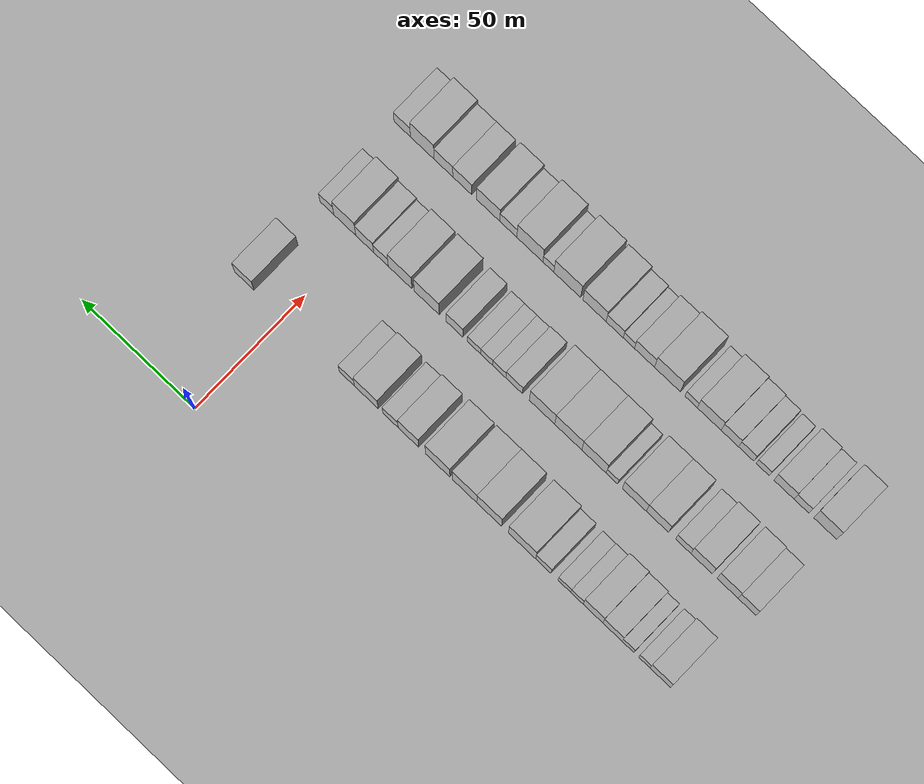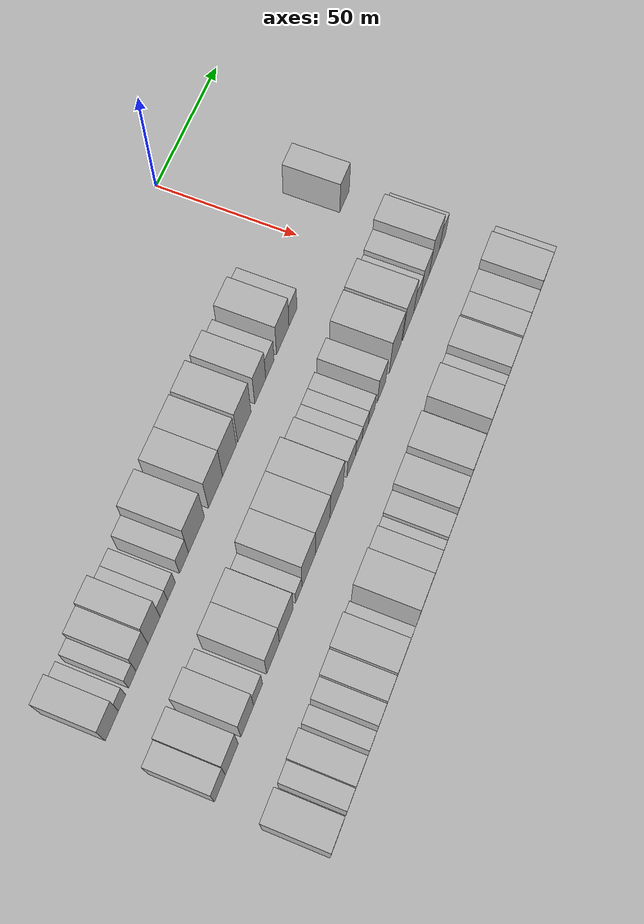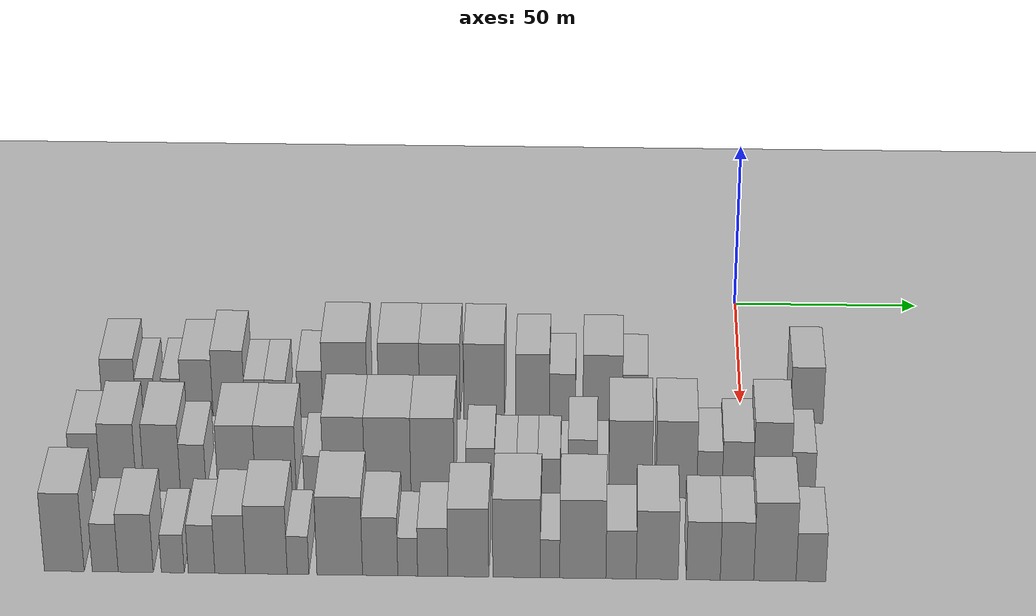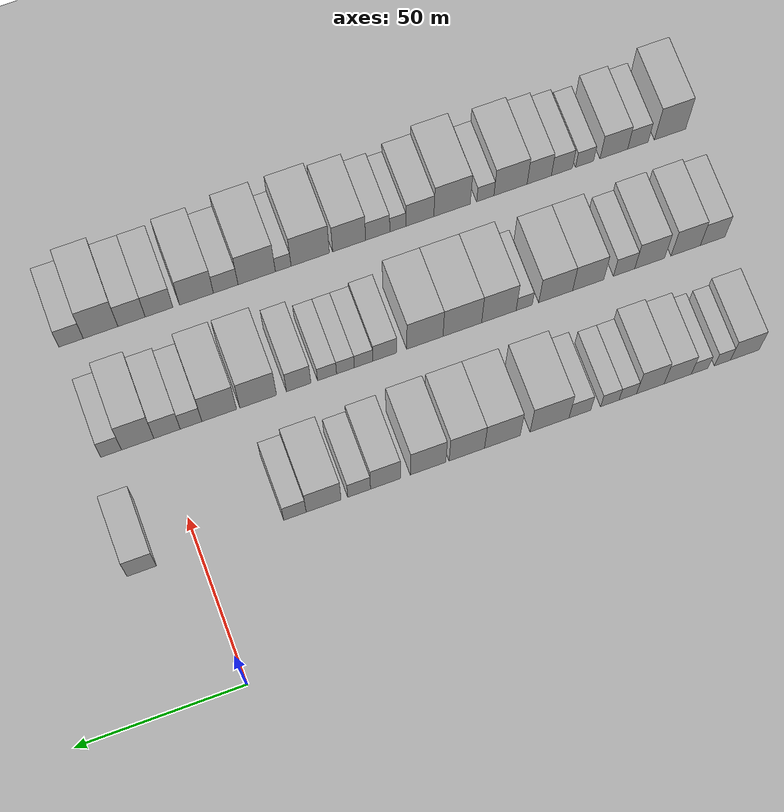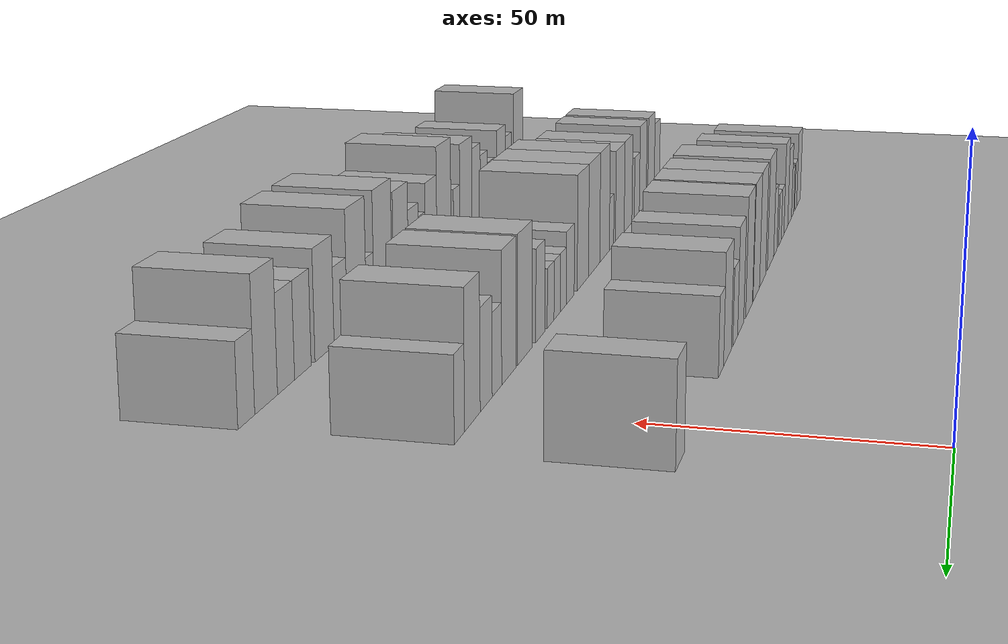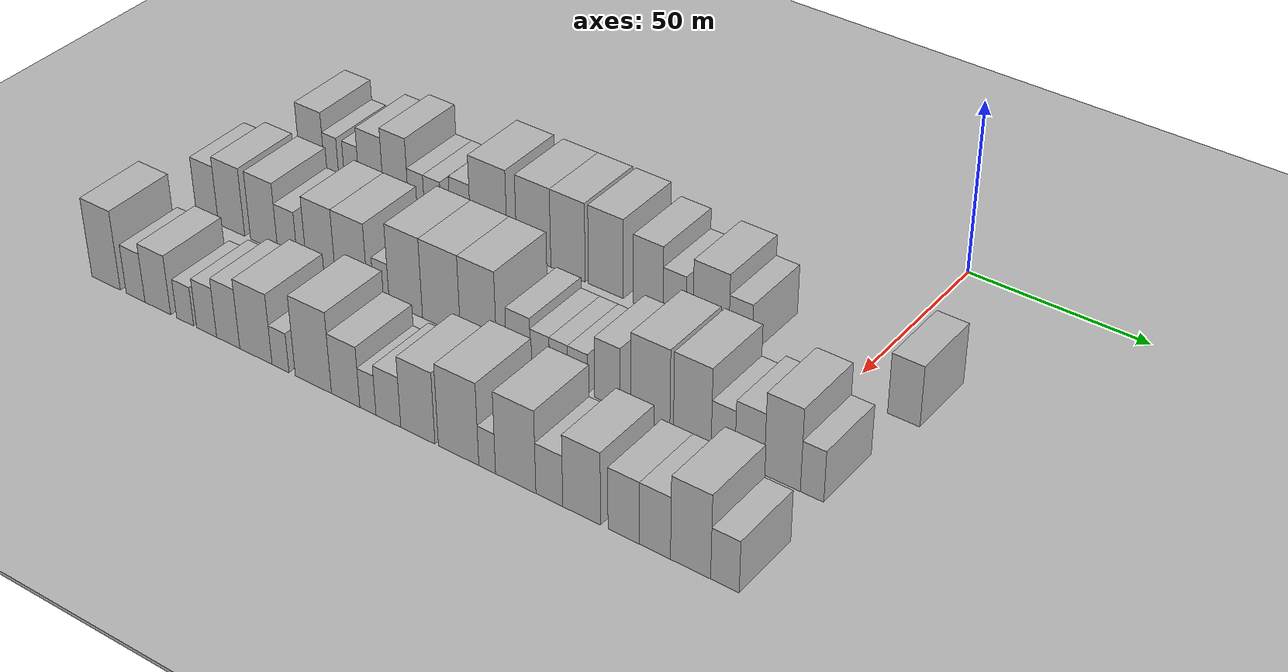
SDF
<sdf version="1.6">
 <world name="default">
  <include><name>ground_plane_1</name><uri>model://HANNAS_ground_plane</uri></include>
  <include>
   <name>ground_plane_2</name>
   <uri>model://HANNAS_ground_plane</uri>
   <pose>100 0 0  0 0 0</pose>
  </include>
  <model name="building_22">
   <static>1</static>
   <pose>50.0000 -164.6503 0 0.000000 0.000000 0.000000</pose>
   <link name="link">
    <pose>0 0 9.00 0 0 0</pose>
    <collision name="collision"><geometry><box><size>20.0000 8.8619 18.0000</size></box></geometry></collision>
    <visual name="visual">
     <cast_shadows>0</cast_shadows>
     <geometry><box><size>20.0000 8.8619 18.0000</size></box></geometry>
     <material>
      <script>
       <uri>model://HANNAS_wall/materials/scripts</uri>
       <uri>model://HANNAS_wall/materials/textures</uri>
       <name>vrc/HANNAS_wall</name>
      </script>
     </material>
    </visual>
   </link>
  </model>
  <model name="building_23">
   <static>1</static>
   <pose>50.0000 -157.7561 0 0.000000 0.000000 0.000000</pose>
   <link name="link">
    <pose>0 0 6.00 0 0 0</pose>
    <collision name="collision"><geometry><box><size>20.0000 4.9264 12.0000</size></box></geometry></collision>
    <visual name="visual">
     <cast_shadows>0</cast_shadows>
     <geometry><box><size>20.0000 4.9264 12.0000</size></box></geometry>
     <material>
      <script>
       <uri>model://HANNAS_wall/materials/scripts</uri>
       <uri>model://HANNAS_wall/materials/textures</uri>
       <name>vrc/HANNAS_wall</name>
      </script>
     </material>
    </visual>
   </link>
  </model>
  <model name="building_24">
   <static>1</static>
   <pose>50.0000 -150.7325 0 0.000000 0.000000 0.000000</pose>
   <link name="link">
    <pose>0 0 6.00 0 0 0</pose>
    <collision name="collision"><geometry><box><size>20.0000 5.1209 12.0000</size></box></geometry></collision>
    <visual name="visual">
     <cast_shadows>0</cast_shadows>
     <geometry><box><size>20.0000 5.1209 12.0000</size></box></geometry>
     <material>
      <script>
       <uri>model://HANNAS_wall/materials/scripts</uri>
       <uri>model://HANNAS_wall/materials/textures</uri>
       <name>vrc/HANNAS_wall</name>
      </script>
     </material>
    </visual>
   </link>
  </model>
  <model name="building_25">
   <static>1</static>
   <pose>50.0000 -143.9937 0 0.000000 0.000000 0.000000</pose>
   <link name="link">
    <pose>0 0 9.00 0 0 0</pose>
    <collision name="collision"><geometry><box><size>20.0000 8.3567 18.0000</size></box></geometry></collision>
    <visual name="visual">
     <cast_shadows>0</cast_shadows>
     <geometry><box><size>20.0000 8.3567 18.0000</size></box></geometry>
     <material>
      <script>
       <uri>model://HANNAS_wall/materials/scripts</uri>
       <uri>model://HANNAS_wall/materials/textures</uri>
       <name>vrc/HANNAS_wall</name>
      </script>
     </material>
    </visual>
   </link>
  </model>
  <model name="building_26">
   <static>1</static>
   <pose>50.0000 -135.5827 0 0.000000 0.000000 0.000000</pose>
   <link name="link">
    <pose>0 0 10.50 0 0 0</pose>
    <collision name="collision"><geometry><box><size>20.0000 8.4652 21.0000</size></box></geometry></collision>
    <visual name="visual">
     <cast_shadows>0</cast_shadows>
     <geometry><box><size>20.0000 8.4652 21.0000</size></box></geometry>
     <material>
      <script>
       <uri>model://HANNAS_wall/materials/scripts</uri>
       <uri>model://HANNAS_wall/materials/textures</uri>
       <name>vrc/HANNAS_wall</name>
      </script>
     </material>
    </visual>
   </link>
  </model>
  <model name="building_27">
   <static>1</static>
   <pose>50.0000 -128.6644 0 0.000000 0.000000 0.000000</pose>
   <link name="link">
    <pose>0 0 6.00 0 0 0</pose>
    <collision name="collision"><geometry><box><size>20.0000 5.3713 12.0000</size></box></geometry></collision>
    <visual name="visual">
     <cast_shadows>0</cast_shadows>
     <geometry><box><size>20.0000 5.3713 12.0000</size></box></geometry>
     <material>
      <script>
       <uri>model://HANNAS_wall/materials/scripts</uri>
       <uri>model://HANNAS_wall/materials/textures</uri>
       <name>vrc/HANNAS_wall</name>
      </script>
     </material>
    </visual>
   </link>
  </model>
  <model name="building_28">
   <static>1</static>
   <pose>50.0000 -123.1630 0 0.000000 0.000000 0.000000</pose>
   <link name="link">
    <pose>0 0 6.00 0 0 0</pose>
    <collision name="collision"><geometry><box><size>20.0000 5.6315 12.0000</size></box></geometry></collision>
    <visual name="visual">
     <cast_shadows>0</cast_shadows>
     <geometry><box><size>20.0000 5.6315 12.0000</size></box></geometry>
     <material>
      <script>
       <uri>model://HANNAS_wall/materials/scripts</uri>
       <uri>model://HANNAS_wall/materials/textures</uri>
       <name>vrc/HANNAS_wall</name>
      </script>
     </material>
    </visual>
   </link>
  </model>
  <model name="building_29">
   <static>1</static>
   <pose>50.0000 -114.0259 0 0.000000 0.000000 0.000000</pose>
   <link name="link">
    <pose>0 0 7.50 0 0 0</pose>
    <collision name="collision"><geometry><box><size>20.0000 6.6426 15.0000</size></box></geometry></collision>
    <visual name="visual">
     <cast_shadows>0</cast_shadows>
     <geometry><box><size>20.0000 6.6426 15.0000</size></box></geometry>
     <material>
      <script>
       <uri>model://HANNAS_wall/materials/scripts</uri>
       <uri>model://HANNAS_wall/materials/textures</uri>
       <name>vrc/HANNAS_wall</name>
      </script>
     </material>
    </visual>
   </link>
  </model>
  <model name="building_30">
   <static>1</static>
   <pose>50.0000 -104.7813 0 0.000000 0.000000 0.000000</pose>
   <link name="link">
    <pose>0 0 12.00 0 0 0</pose>
    <collision name="collision"><geometry><box><size>20.0000 11.8466 24.0000</size></box></geometry></collision>
    <visual name="visual">
     <cast_shadows>0</cast_shadows>
     <geometry><box><size>20.0000 11.8466 24.0000</size></box></geometry>
     <material>
      <script>
       <uri>model://HANNAS_wall/materials/scripts</uri>
       <uri>model://HANNAS_wall/materials/textures</uri>
       <name>vrc/HANNAS_wall</name>
      </script>
     </material>
    </visual>
   </link>
  </model>
  <model name="building_31">
   <static>1</static>
   <pose>50.0000 -90.4569 0 0.000000 0.000000 0.000000</pose>
   <link name="link">
    <pose>0 0 12.00 0 0 0</pose>
    <collision name="collision"><geometry><box><size>20.0000 10.8022 24.0000</size></box></geometry></collision>
    <visual name="visual">
     <cast_shadows>0</cast_shadows>
     <geometry><box><size>20.0000 10.8022 24.0000</size></box></geometry>
     <material>
      <script>
       <uri>model://HANNAS_wall/materials/scripts</uri>
       <uri>model://HANNAS_wall/materials/textures</uri>
       <name>vrc/HANNAS_wall</name>
      </script>
     </material>
    </visual>
   </link>
  </model>
  <model name="building_32">
   <static>1</static>
   <pose>50.0000 -79.7071 0 0.000000 0.000000 0.000000</pose>
   <link name="link">
    <pose>0 0 12.00 0 0 0</pose>
    <collision name="collision"><geometry><box><size>20.0000 10.6972 24.0000</size></box></geometry></collision>
    <visual name="visual">
     <cast_shadows>0</cast_shadows>
     <geometry><box><size>20.0000 10.6972 24.0000</size></box></geometry>
     <material>
      <script>
       <uri>model://HANNAS_wall/materials/scripts</uri>
       <uri>model://HANNAS_wall/materials/textures</uri>
       <name>vrc/HANNAS_wall</name>
      </script>
     </material>
    </visual>
   </link>
  </model>
  <model name="building_33">
   <static>1</static>
   <pose>50.0000 -68.0241 0 0.000000 0.000000 0.000000</pose>
   <link name="link">
    <pose>0 0 12.00 0 0 0</pose>
    <collision name="collision"><geometry><box><size>20.0000 10.6688 24.0000</size></box></geometry></collision>
    <visual name="visual">
     <cast_shadows>0</cast_shadows>
     <geometry><box><size>20.0000 10.6688 24.0000</size></box></geometry>
     <material>
      <script>
       <uri>model://HANNAS_wall/materials/scripts</uri>
       <uri>model://HANNAS_wall/materials/textures</uri>
       <name>vrc/HANNAS_wall</name>
      </script>
     </material>
    </visual>
   </link>
  </model>
  <model name="building_34">
   <static>1</static>
   <pose>50.0000 -55.2300 0 0.000000 0.000000 0.000000</pose>
   <link name="link">
    <pose>0 0 10.50 0 0 0</pose>
    <collision name="collision"><geometry><box><size>20.0000 8.9194 21.0000</size></box></geometry></collision>
    <visual name="visual">
     <cast_shadows>0</cast_shadows>
     <geometry><box><size>20.0000 8.9194 21.0000</size></box></geometry>
     <material>
      <script>
       <uri>model://HANNAS_wall/materials/scripts</uri>
       <uri>model://HANNAS_wall/materials/textures</uri>
       <name>vrc/HANNAS_wall</name>
      </script>
     </material>
    </visual>
   </link>
  </model>
  <model name="building_35">
   <static>1</static>
   <pose>50.0000 -47.3699 0 0.000000 0.000000 0.000000</pose>
   <link name="link">
    <pose>0 0 7.50 0 0 0</pose>
    <collision name="collision"><geometry><box><size>20.0000 6.8007 15.0000</size></box></geometry></collision>
    <visual name="visual">
     <cast_shadows>0</cast_shadows>
     <geometry><box><size>20.0000 6.8007 15.0000</size></box></geometry>
     <material>
      <script>
       <uri>model://HANNAS_wall/materials/scripts</uri>
       <uri>model://HANNAS_wall/materials/textures</uri>
       <name>vrc/HANNAS_wall</name>
      </script>
     </material>
    </visual>
   </link>
  </model>
  <model name="building_36">
   <static>1</static>
   <pose>50.0000 -36.7669 0 0.000000 0.000000 0.000000</pose>
   <link name="link">
    <pose>0 0 10.50 0 0 0</pose>
    <collision name="collision"><geometry><box><size>20.0000 10.4052 21.0000</size></box></geometry></collision>
    <visual name="visual">
     <cast_shadows>0</cast_shadows>
     <geometry><box><size>20.0000 10.4052 21.0000</size></box></geometry>
     <material>
      <script>
       <uri>model://HANNAS_wall/materials/scripts</uri>
       <uri>model://HANNAS_wall/materials/textures</uri>
       <name>vrc/HANNAS_wall</name>
      </script>
     </material>
    </visual>
   </link>
  </model>
  <model name="building_37">
   <static>1</static>
   <pose>50.0000 -28.2242 0 0.000000 0.000000 0.000000</pose>
   <link name="link">
    <pose>0 0 7.50 0 0 0</pose>
    <collision name="collision"><geometry><box><size>20.0000 6.6804 15.0000</size></box></geometry></collision>
    <visual name="visual">
     <cast_shadows>0</cast_shadows>
     <geometry><box><size>20.0000 6.6804 15.0000</size></box></geometry>
     <material>
      <script>
       <uri>model://HANNAS_wall/materials/scripts</uri>
       <uri>model://HANNAS_wall/materials/textures</uri>
       <name>vrc/HANNAS_wall</name>
      </script>
     </material>
    </visual>
   </link>
  </model>
  <model name="building_38">
   <static>1</static>
   <pose>50.0000 17.0662 0 0.000000 0.000000 0.000000</pose>
   <link name="link">
    <pose>0 0 9.00 0 0 0</pose>
    <collision name="collision"><geometry><box><size>20.0000 8.6335 18.0000</size></box></geometry></collision>
    <visual name="visual">
     <cast_shadows>0</cast_shadows>
     <geometry><box><size>20.0000 8.6335 18.0000</size></box></geometry>
     <material>
      <script>
       <uri>model://HANNAS_wall/materials/scripts</uri>
       <uri>model://HANNAS_wall/materials/textures</uri>
       <name>vrc/HANNAS_wall</name>
      </script>
     </material>
    </visual>
   </link>
  </model>
  <model name="building_101">
   <static>1</static>
   <pose>85.0000 -169.0728 0 0.000000 0.000000 0.000000</pose>
   <link name="link">
    <pose>0 0 9.00 0 0 0</pose>
    <collision name="collision"><geometry><box><size>20.0000 7.7032 18.0000</size></box></geometry></collision>
    <visual name="visual">
     <cast_shadows>0</cast_shadows>
     <geometry><box><size>20.0000 7.7032 18.0000</size></box></geometry>
     <material>
      <script>
       <uri>model://HANNAS_wall/materials/scripts</uri>
       <uri>model://HANNAS_wall/materials/textures</uri>
       <name>vrc/HANNAS_wall</name>
      </script>
     </material>
    </visual>
   </link>
  </model>
  <model name="building_102">
   <static>1</static>
   <pose>85.0000 -160.6480 0 0.000000 0.000000 0.000000</pose>
   <link name="link">
    <pose>0 0 10.50 0 0 0</pose>
    <collision name="collision"><geometry><box><size>20.0000 9.1465 21.0000</size></box></geometry></collision>
    <visual name="visual">
     <cast_shadows>0</cast_shadows>
     <geometry><box><size>20.0000 9.1465 21.0000</size></box></geometry>
     <material>
      <script>
       <uri>model://HANNAS_wall/materials/scripts</uri>
       <uri>model://HANNAS_wall/materials/textures</uri>
       <name>vrc/HANNAS_wall</name>
      </script>
     </material>
    </visual>
   </link>
  </model>
  <model name="building_103">
   <static>1</static>
   <pose>85.0000 -149.4243 0 0.000000 0.000000 0.000000</pose>
   <link name="link">
    <pose>0 0 10.50 0 0 0</pose>
    <collision name="collision"><geometry><box><size>20.0000 9.3009 21.0000</size></box></geometry></collision>
    <visual name="visual">
     <cast_shadows>0</cast_shadows>
     <geometry><box><size>20.0000 9.3009 21.0000</size></box></geometry>
     <material>
      <script>
       <uri>model://HANNAS_wall/materials/scripts</uri>
       <uri>model://HANNAS_wall/materials/textures</uri>
       <name>vrc/HANNAS_wall</name>
      </script>
     </material>
    </visual>
   </link>
  </model>
  <model name="building_104">
   <static>1</static>
   <pose>85.0000 -141.4688 0 0.000000 0.000000 0.000000</pose>
   <link name="link">
    <pose>0 0 7.50 0 0 0</pose>
    <collision name="collision"><geometry><box><size>20.0000 6.6101 15.0000</size></box></geometry></collision>
    <visual name="visual">
     <cast_shadows>0</cast_shadows>
     <geometry><box><size>20.0000 6.6101 15.0000</size></box></geometry>
     <material>
      <script>
       <uri>model://HANNAS_wall/materials/scripts</uri>
       <uri>model://HANNAS_wall/materials/textures</uri>
       <name>vrc/HANNAS_wall</name>
      </script>
     </material>
    </visual>
   </link>
  </model>
  <model name="building_105">
   <static>1</static>
   <pose>85.0000 -130.3325 0 0.000000 0.000000 0.000000</pose>
   <link name="link">
    <pose>0 0 10.50 0 0 0</pose>
    <collision name="collision"><geometry><box><size>20.0000 9.6625 21.0000</size></box></geometry></collision>
    <visual name="visual">
     <cast_shadows>0</cast_shadows>
     <geometry><box><size>20.0000 9.6625 21.0000</size></box></geometry>
     <material>
      <script>
       <uri>model://HANNAS_wall/materials/scripts</uri>
       <uri>model://HANNAS_wall/materials/textures</uri>
       <name>vrc/HANNAS_wall</name>
      </script>
     </material>
    </visual>
   </link>
  </model>
  <model name="building_106">
   <static>1</static>
   <pose>85.0000 -120.2630 0 0.000000 0.000000 0.000000</pose>
   <link name="link">
    <pose>0 0 10.50 0 0 0</pose>
    <collision name="collision"><geometry><box><size>20.0000 10.4763 21.0000</size></box></geometry></collision>
    <visual name="visual">
     <cast_shadows>0</cast_shadows>
     <geometry><box><size>20.0000 10.4763 21.0000</size></box></geometry>
     <material>
      <script>
       <uri>model://HANNAS_wall/materials/scripts</uri>
       <uri>model://HANNAS_wall/materials/textures</uri>
       <name>vrc/HANNAS_wall</name>
      </script>
     </material>
    </visual>
   </link>
  </model>
  <model name="building_107">
   <static>1</static>
   <pose>85.0000 -110.5407 0 0.000000 0.000000 0.000000</pose>
   <link name="link">
    <pose>0 0 6.00 0 0 0</pose>
    <collision name="collision"><geometry><box><size>20.0000 4.9684 12.0000</size></box></geometry></collision>
    <visual name="visual">
     <cast_shadows>0</cast_shadows>
     <geometry><box><size>20.0000 4.9684 12.0000</size></box></geometry>
     <material>
      <script>
       <uri>model://HANNAS_wall/materials/scripts</uri>
       <uri>model://HANNAS_wall/materials/textures</uri>
       <name>vrc/HANNAS_wall</name>
      </script>
     </material>
    </visual>
   </link>
  </model>
  <model name="building_108">
   <static>1</static>
   <pose>85.0000 -102.7590 0 0.000000 0.000000 0.000000</pose>
   <link name="link">
    <pose>0 0 12.00 0 0 0</pose>
    <collision name="collision"><geometry><box><size>20.0000 10.5949 24.0000</size></box></geometry></collision>
    <visual name="visual">
     <cast_shadows>0</cast_shadows>
     <geometry><box><size>20.0000 10.5949 24.0000</size></box></geometry>
     <material>
      <script>
       <uri>model://HANNAS_wall/materials/scripts</uri>
       <uri>model://HANNAS_wall/materials/textures</uri>
       <name>vrc/HANNAS_wall</name>
      </script>
     </material>
    </visual>
   </link>
  </model>
  <model name="building_109">
   <static>1</static>
   <pose>85.0000 -91.5462 0 0.000000 0.000000 0.000000</pose>
   <link name="link">
    <pose>0 0 12.00 0 0 0</pose>
    <collision name="collision"><geometry><box><size>20.0000 11.8308 24.0000</size></box></geometry></collision>
    <visual name="visual">
     <cast_shadows>0</cast_shadows>
     <geometry><box><size>20.0000 11.8308 24.0000</size></box></geometry>
     <material>
      <script>
       <uri>model://HANNAS_wall/materials/scripts</uri>
       <uri>model://HANNAS_wall/materials/textures</uri>
       <name>vrc/HANNAS_wall</name>
      </script>
     </material>
    </visual>
   </link>
  </model>
  <model name="building_110">
   <static>1</static>
   <pose>85.0000 -80.0822 0 0.000000 0.000000 0.000000</pose>
   <link name="link">
    <pose>0 0 12.00 0 0 0</pose>
    <collision name="collision"><geometry><box><size>20.0000 11.0972 24.0000</size></box></geometry></collision>
    <visual name="visual">
     <cast_shadows>0</cast_shadows>
     <geometry><box><size>20.0000 11.0972 24.0000</size></box></geometry>
     <material>
      <script>
       <uri>model://HANNAS_wall/materials/scripts</uri>
       <uri>model://HANNAS_wall/materials/textures</uri>
       <name>vrc/HANNAS_wall</name>
      </script>
     </material>
    </visual>
   </link>
  </model>
  <model name="building_111">
   <static>1</static>
   <pose>85.0000 -67.9047 0 0.000000 0.000000 0.000000</pose>
   <link name="link">
    <pose>0 0 7.50 0 0 0</pose>
    <collision name="collision"><geometry><box><size>20.0000 7.2578 15.0000</size></box></geometry></collision>
    <visual name="visual">
     <cast_shadows>0</cast_shadows>
     <geometry><box><size>20.0000 7.2578 15.0000</size></box></geometry>
     <material>
      <script>
       <uri>model://HANNAS_wall/materials/scripts</uri>
       <uri>model://HANNAS_wall/materials/textures</uri>
       <name>vrc/HANNAS_wall</name>
      </script>
     </material>
    </visual>
   </link>
  </model>
  <model name="building_112">
   <static>1</static>
   <pose>85.0000 -61.4487 0 0.000000 0.000000 0.000000</pose>
   <link name="link">
    <pose>0 0 6.00 0 0 0</pose>
    <collision name="collision"><geometry><box><size>20.0000 5.6542 12.0000</size></box></geometry></collision>
    <visual name="visual">
     <cast_shadows>0</cast_shadows>
     <geometry><box><size>20.0000 5.6542 12.0000</size></box></geometry>
     <material>
      <script>
       <uri>model://HANNAS_wall/materials/scripts</uri>
       <uri>model://HANNAS_wall/materials/textures</uri>
       <name>vrc/HANNAS_wall</name>
      </script>
     </material>
    </visual>
   </link>
  </model>
  <model name="building_113">
   <static>1</static>
   <pose>85.0000 -55.9316 0 0.000000 0.000000 0.000000</pose>
   <link name="link">
    <pose>0 0 6.00 0 0 0</pose>
    <collision name="collision"><geometry><box><size>20.0000 5.3800 12.0000</size></box></geometry></collision>
    <visual name="visual">
     <cast_shadows>0</cast_shadows>
     <geometry><box><size>20.0000 5.3800 12.0000</size></box></geometry>
     <material>
      <script>
       <uri>model://HANNAS_wall/materials/scripts</uri>
       <uri>model://HANNAS_wall/materials/textures</uri>
       <name>vrc/HANNAS_wall</name>
      </script>
     </material>
    </visual>
   </link>
  </model>
  <model name="building_114">
   <static>1</static>
   <pose>85.0000 -50.3566 0 0.000000 0.000000 0.000000</pose>
   <link name="link">
    <pose>0 0 6.00 0 0 0</pose>
    <collision name="collision"><geometry><box><size>20.0000 5.7701 12.0000</size></box></geometry></collision>
    <visual name="visual">
     <cast_shadows>0</cast_shadows>
     <geometry><box><size>20.0000 5.7701 12.0000</size></box></geometry>
     <material>
      <script>
       <uri>model://HANNAS_wall/materials/scripts</uri>
       <uri>model://HANNAS_wall/materials/textures</uri>
       <name>vrc/HANNAS_wall</name>
      </script>
     </material>
    </visual>
   </link>
  </model>
  <model name="building_115">
   <static>1</static>
   <pose>85.0000 -41.7808 0 0.000000 0.000000 0.000000</pose>
   <link name="link">
    <pose>0 0 9.00 0 0 0</pose>
    <collision name="collision"><geometry><box><size>20.0000 7.3815 18.0000</size></box></geometry></collision>
    <visual name="visual">
     <cast_shadows>0</cast_shadows>
     <geometry><box><size>20.0000 7.3815 18.0000</size></box></geometry>
     <material>
      <script>
       <uri>model://HANNAS_wall/materials/scripts</uri>
       <uri>model://HANNAS_wall/materials/textures</uri>
       <name>vrc/HANNAS_wall</name>
      </script>
     </material>
    </visual>
   </link>
  </model>
  <model name="building_116">
   <static>1</static>
   <pose>85.0000 -29.5702 0 0.000000 0.000000 0.000000</pose>
   <link name="link">
    <pose>0 0 12.00 0 0 0</pose>
    <collision name="collision"><geometry><box><size>20.0000 11.0395 24.0000</size></box></geometry></collision>
    <visual name="visual">
     <cast_shadows>0</cast_shadows>
     <geometry><box><size>20.0000 11.0395 24.0000</size></box></geometry>
     <material>
      <script>
       <uri>model://HANNAS_wall/materials/scripts</uri>
       <uri>model://HANNAS_wall/materials/textures</uri>
       <name>vrc/HANNAS_wall</name>
      </script>
     </material>
    </visual>
   </link>
  </model>
  <model name="building_117">
   <static>1</static>
   <pose>85.0000 -17.8379 0 0.000000 0.000000 0.000000</pose>
   <link name="link">
    <pose>0 0 12.00 0 0 0</pose>
    <collision name="collision"><geometry><box><size>20.0000 10.4251 24.0000</size></box></geometry></collision>
    <visual name="visual">
     <cast_shadows>0</cast_shadows>
     <geometry><box><size>20.0000 10.4251 24.0000</size></box></geometry>
     <material>
      <script>
       <uri>model://HANNAS_wall/materials/scripts</uri>
       <uri>model://HANNAS_wall/materials/textures</uri>
       <name>vrc/HANNAS_wall</name>
      </script>
     </material>
    </visual>
   </link>
  </model>
  <model name="building_118">
   <static>1</static>
   <pose>85.0000 -9.3862 0 0.000000 0.000000 0.000000</pose>
   <link name="link">
    <pose>0 0 7.50 0 0 0</pose>
    <collision name="collision"><geometry><box><size>20.0000 6.4783 15.0000</size></box></geometry></collision>
    <visual name="visual">
     <cast_shadows>0</cast_shadows>
     <geometry><box><size>20.0000 6.4783 15.0000</size></box></geometry>
     <material>
      <script>
       <uri>model://HANNAS_wall/materials/scripts</uri>
       <uri>model://HANNAS_wall/materials/textures</uri>
       <name>vrc/HANNAS_wall</name>
      </script>
     </material>
    </visual>
   </link>
  </model>
  <model name="building_119">
   <static>1</static>
   <pose>85.0000 -2.2096 0 0.000000 0.000000 0.000000</pose>
   <link name="link">
    <pose>0 0 9.00 0 0 0</pose>
    <collision name="collision"><geometry><box><size>20.0000 7.8748 18.0000</size></box></geometry></collision>
    <visual name="visual">
     <cast_shadows>0</cast_shadows>
     <geometry><box><size>20.0000 7.8748 18.0000</size></box></geometry>
     <material>
      <script>
       <uri>model://HANNAS_wall/materials/scripts</uri>
       <uri>model://HANNAS_wall/materials/textures</uri>
       <name>vrc/HANNAS_wall</name>
      </script>
     </material>
    </visual>
   </link>
  </model>
  <model name="building_120">
   <static>1</static>
   <pose>85.0000 6.5571 0 0.000000 0.000000 0.000000</pose>
   <link name="link">
    <pose>0 0 12.00 0 0 0</pose>
    <collision name="collision"><geometry><box><size>20.0000 9.6587 24.0000</size></box></geometry></collision>
    <visual name="visual">
     <cast_shadows>0</cast_shadows>
     <geometry><box><size>20.0000 9.6587 24.0000</size></box></geometry>
     <material>
      <script>
       <uri>model://HANNAS_wall/materials/scripts</uri>
       <uri>model://HANNAS_wall/materials/textures</uri>
       <name>vrc/HANNAS_wall</name>
      </script>
     </material>
    </visual>
   </link>
  </model>
  <model name="building_121">
   <static>1</static>
   <pose>85.0000 14.4633 0 0.000000 0.000000 0.000000</pose>
   <link name="link">
    <pose>0 0 7.50 0 0 0</pose>
    <collision name="collision"><geometry><box><size>20.0000 6.1537 15.0000</size></box></geometry></collision>
    <visual name="visual">
     <cast_shadows>0</cast_shadows>
     <geometry><box><size>20.0000 6.1537 15.0000</size></box></geometry>
     <material>
      <script>
       <uri>model://HANNAS_wall/materials/scripts</uri>
       <uri>model://HANNAS_wall/materials/textures</uri>
       <name>vrc/HANNAS_wall</name>
      </script>
     </material>
    </visual>
   </link>
  </model>
  <model name="building_182">
   <static>1</static>
   <pose>120.0000 -169.9142 0 0.000000 0.000000 0.000000</pose>
   <link name="link">
    <pose>0 0 12.00 0 0 0</pose>
    <collision name="collision"><geometry><box><size>20.0000 9.8961 24.0000</size></box></geometry></collision>
    <visual name="visual">
     <cast_shadows>0</cast_shadows>
     <geometry><box><size>20.0000 9.8961 24.0000</size></box></geometry>
     <material>
      <script>
       <uri>model://HANNAS_wall/materials/scripts</uri>
       <uri>model://HANNAS_wall/materials/textures</uri>
       <name>vrc/HANNAS_wall</name>
      </script>
     </material>
    </visual>
   </link>
  </model>
  <model name="building_183">
   <static>1</static>
   <pose>120.0000 -159.7440 0 0.000000 0.000000 0.000000</pose>
   <link name="link">
    <pose>0 0 7.50 0 0 0</pose>
    <collision name="collision"><geometry><box><size>20.0000 6.4444 15.0000</size></box></geometry></collision>
    <visual name="visual">
     <cast_shadows>0</cast_shadows>
     <geometry><box><size>20.0000 6.4444 15.0000</size></box></geometry>
     <material>
      <script>
       <uri>model://HANNAS_wall/materials/scripts</uri>
       <uri>model://HANNAS_wall/materials/textures</uri>
       <name>vrc/HANNAS_wall</name>
      </script>
     </material>
    </visual>
   </link>
  </model>
  <model name="building_184">
   <static>1</static>
   <pose>120.0000 -152.1622 0 0.000000 0.000000 0.000000</pose>
   <link name="link">
    <pose>0 0 9.00 0 0 0</pose>
    <collision name="collision"><geometry><box><size>20.0000 8.7193 18.0000</size></box></geometry></collision>
    <visual name="visual">
     <cast_shadows>0</cast_shadows>
     <geometry><box><size>20.0000 8.7193 18.0000</size></box></geometry>
     <material>
      <script>
       <uri>model://HANNAS_wall/materials/scripts</uri>
       <uri>model://HANNAS_wall/materials/textures</uri>
       <name>vrc/HANNAS_wall</name>
      </script>
     </material>
    </visual>
   </link>
  </model>
  <model name="building_185">
   <static>1</static>
   <pose>120.0000 -142.9610 0 0.000000 0.000000 0.000000</pose>
   <link name="link">
    <pose>0 0 6.00 0 0 0</pose>
    <collision name="collision"><geometry><box><size>20.0000 5.6831 12.0000</size></box></geometry></collision>
    <visual name="visual">
     <cast_shadows>0</cast_shadows>
     <geometry><box><size>20.0000 5.6831 12.0000</size></box></geometry>
     <material>
      <script>
       <uri>model://HANNAS_wall/materials/scripts</uri>
       <uri>model://HANNAS_wall/materials/textures</uri>
       <name>vrc/HANNAS_wall</name>
      </script>
     </material>
    </visual>
   </link>
  </model>
  <model name="building_186">
   <static>1</static>
   <pose>120.0000 -135.8182 0 0.000000 0.000000 0.000000</pose>
   <link name="link">
    <pose>0 0 7.50 0 0 0</pose>
    <collision name="collision"><geometry><box><size>20.0000 6.6024 15.0000</size></box></geometry></collision>
    <visual name="visual">
     <cast_shadows>0</cast_shadows>
     <geometry><box><size>20.0000 6.6024 15.0000</size></box></geometry>
     <material>
      <script>
       <uri>model://HANNAS_wall/materials/scripts</uri>
       <uri>model://HANNAS_wall/materials/textures</uri>
       <name>vrc/HANNAS_wall</name>
      </script>
     </material>
    </visual>
   </link>
  </model>
  <model name="building_187">
   <static>1</static>
   <pose>120.0000 -128.7287 0 0.000000 0.000000 0.000000</pose>
   <link name="link">
    <pose>0 0 9.00 0 0 0</pose>
    <collision name="collision"><geometry><box><size>20.0000 7.5767 18.0000</size></box></geometry></collision>
    <visual name="visual">
     <cast_shadows>0</cast_shadows>
     <geometry><box><size>20.0000 7.5767 18.0000</size></box></geometry>
     <material>
      <script>
       <uri>model://HANNAS_wall/materials/scripts</uri>
       <uri>model://HANNAS_wall/materials/textures</uri>
       <name>vrc/HANNAS_wall</name>
      </script>
     </material>
    </visual>
   </link>
  </model>
  <model name="building_188">
   <static>1</static>
   <pose>120.0000 -119.7520 0 0.000000 0.000000 0.000000</pose>
   <link name="link">
    <pose>0 0 10.50 0 0 0</pose>
    <collision name="collision"><geometry><box><size>20.0000 10.3766 21.0000</size></box></geometry></collision>
    <visual name="visual">
     <cast_shadows>0</cast_shadows>
     <geometry><box><size>20.0000 10.3766 21.0000</size></box></geometry>
     <material>
      <script>
       <uri>model://HANNAS_wall/materials/scripts</uri>
       <uri>model://HANNAS_wall/materials/textures</uri>
       <name>vrc/HANNAS_wall</name>
      </script>
     </material>
    </visual>
   </link>
  </model>
  <model name="building_189">
   <static>1</static>
   <pose>120.0000 -111.8756 0 0.000000 0.000000 0.000000</pose>
   <link name="link">
    <pose>0 0 6.00 0 0 0</pose>
    <collision name="collision"><geometry><box><size>20.0000 5.3761 12.0000</size></box></geometry></collision>
    <visual name="visual">
     <cast_shadows>0</cast_shadows>
     <geometry><box><size>20.0000 5.3761 12.0000</size></box></geometry>
     <material>
      <script>
       <uri>model://HANNAS_wall/materials/scripts</uri>
       <uri>model://HANNAS_wall/materials/textures</uri>
       <name>vrc/HANNAS_wall</name>
      </script>
     </material>
    </visual>
   </link>
  </model>
  <model name="building_190">
   <static>1</static>
   <pose>120.0000 -101.5343 0 0.000000 0.000000 0.000000</pose>
   <link name="link">
    <pose>0 0 12.00 0 0 0</pose>
    <collision name="collision"><geometry><box><size>20.0000 11.3065 24.0000</size></box></geometry></collision>
    <visual name="visual">
     <cast_shadows>0</cast_shadows>
     <geometry><box><size>20.0000 11.3065 24.0000</size></box></geometry>
     <material>
      <script>
       <uri>model://HANNAS_wall/materials/scripts</uri>
       <uri>model://HANNAS_wall/materials/textures</uri>
       <name>vrc/HANNAS_wall</name>
      </script>
     </material>
    </visual>
   </link>
  </model>
  <model name="building_191">
   <static>1</static>
   <pose>120.0000 -91.5166 0 0.000000 0.000000 0.000000</pose>
   <link name="link">
    <pose>0 0 9.00 0 0 0</pose>
    <collision name="collision"><geometry><box><size>20.0000 8.7289 18.0000</size></box></geometry></collision>
    <visual name="visual">
     <cast_shadows>0</cast_shadows>
     <geometry><box><size>20.0000 8.7289 18.0000</size></box></geometry>
     <material>
      <script>
       <uri>model://HANNAS_wall/materials/scripts</uri>
       <uri>model://HANNAS_wall/materials/textures</uri>
       <name>vrc/HANNAS_wall</name>
      </script>
     </material>
    </visual>
   </link>
  </model>
  <model name="building_192">
   <static>1</static>
   <pose>120.0000 -84.6899 0 0.000000 0.000000 0.000000</pose>
   <link name="link">
    <pose>0 0 6.00 0 0 0</pose>
    <collision name="collision"><geometry><box><size>20.0000 4.9247 12.0000</size></box></geometry></collision>
    <visual name="visual">
     <cast_shadows>0</cast_shadows>
     <geometry><box><size>20.0000 4.9247 12.0000</size></box></geometry>
     <material>
      <script>
       <uri>model://HANNAS_wall/materials/scripts</uri>
       <uri>model://HANNAS_wall/materials/textures</uri>
       <name>vrc/HANNAS_wall</name>
      </script>
     </material>
    </visual>
   </link>
  </model>
  <model name="building_193">
   <static>1</static>
   <pose>120.0000 -78.4945 0 0.000000 0.000000 0.000000</pose>
   <link name="link">
    <pose>0 0 7.50 0 0 0</pose>
    <collision name="collision"><geometry><box><size>20.0000 7.4659 15.0000</size></box></geometry></collision>
    <visual name="visual">
     <cast_shadows>0</cast_shadows>
     <geometry><box><size>20.0000 7.4659 15.0000</size></box></geometry>
     <material>
      <script>
       <uri>model://HANNAS_wall/materials/scripts</uri>
       <uri>model://HANNAS_wall/materials/textures</uri>
       <name>vrc/HANNAS_wall</name>
      </script>
     </material>
    </visual>
   </link>
  </model>
  <model name="building_194">
   <static>1</static>
   <pose>120.0000 -69.6939 0 0.000000 0.000000 0.000000</pose>
   <link name="link">
    <pose>0 0 10.50 0 0 0</pose>
    <collision name="collision"><geometry><box><size>20.0000 10.1352 21.0000</size></box></geometry></collision>
    <visual name="visual">
     <cast_shadows>0</cast_shadows>
     <geometry><box><size>20.0000 10.1352 21.0000</size></box></geometry>
     <material>
      <script>
       <uri>model://HANNAS_wall/materials/scripts</uri>
       <uri>model://HANNAS_wall/materials/textures</uri>
       <name>vrc/HANNAS_wall</name>
      </script>
     </material>
    </visual>
   </link>
  </model>
  <model name="building_195">
   <static>1</static>
   <pose>120.0000 -57.7542 0 0.000000 0.000000 0.000000</pose>
   <link name="link">
    <pose>0 0 12.00 0 0 0</pose>
    <collision name="collision"><geometry><box><size>20.0000 11.7443 24.0000</size></box></geometry></collision>
    <visual name="visual">
     <cast_shadows>0</cast_shadows>
     <geometry><box><size>20.0000 11.7443 24.0000</size></box></geometry>
     <material>
      <script>
       <uri>model://HANNAS_wall/materials/scripts</uri>
       <uri>model://HANNAS_wall/materials/textures</uri>
       <name>vrc/HANNAS_wall</name>
      </script>
     </material>
    </visual>
   </link>
  </model>
  <model name="building_196">
   <static>1</static>
   <pose>120.0000 -49.4790 0 0.000000 0.000000 0.000000</pose>
   <link name="link">
    <pose>0 0 6.00 0 0 0</pose>
    <collision name="collision"><geometry><box><size>20.0000 4.8061 12.0000</size></box></geometry></collision>
    <visual name="visual">
     <cast_shadows>0</cast_shadows>
     <geometry><box><size>20.0000 4.8061 12.0000</size></box></geometry>
     <material>
      <script>
       <uri>model://HANNAS_wall/materials/scripts</uri>
       <uri>model://HANNAS_wall/materials/textures</uri>
       <name>vrc/HANNAS_wall</name>
      </script>
     </material>
    </visual>
   </link>
  </model>
  <model name="building_197">
   <static>1</static>
   <pose>120.0000 -41.3700 0 0.000000 0.000000 0.000000</pose>
   <link name="link">
    <pose>0 0 12.00 0 0 0</pose>
    <collision name="collision"><geometry><box><size>20.0000 11.4118 24.0000</size></box></geometry></collision>
    <visual name="visual">
     <cast_shadows>0</cast_shadows>
     <geometry><box><size>20.0000 11.4118 24.0000</size></box></geometry>
     <material>
      <script>
       <uri>model://HANNAS_wall/materials/scripts</uri>
       <uri>model://HANNAS_wall/materials/textures</uri>
       <name>vrc/HANNAS_wall</name>
      </script>
     </material>
    </visual>
   </link>
  </model>
  <model name="building_198">
   <static>1</static>
   <pose>120.0000 -31.9165 0 0.000000 0.000000 0.000000</pose>
   <link name="link">
    <pose>0 0 7.50 0 0 0</pose>
    <collision name="collision"><geometry><box><size>20.0000 7.4952 15.0000</size></box></geometry></collision>
    <visual name="visual">
     <cast_shadows>0</cast_shadows>
     <geometry><box><size>20.0000 7.4952 15.0000</size></box></geometry>
     <material>
      <script>
       <uri>model://HANNAS_wall/materials/scripts</uri>
       <uri>model://HANNAS_wall/materials/textures</uri>
       <name>vrc/HANNAS_wall</name>
      </script>
     </material>
    </visual>
   </link>
  </model>
  <model name="building_199">
   <static>1</static>
   <pose>120.0000 -22.9940 0 0.000000 0.000000 0.000000</pose>
   <link name="link">
    <pose>0 0 10.50 0 0 0</pose>
    <collision name="collision"><geometry><box><size>20.0000 10.3498 21.0000</size></box></geometry></collision>
    <visual name="visual">
     <cast_shadows>0</cast_shadows>
     <geometry><box><size>20.0000 10.3498 21.0000</size></box></geometry>
     <material>
      <script>
       <uri>model://HANNAS_wall/materials/scripts</uri>
       <uri>model://HANNAS_wall/materials/textures</uri>
       <name>vrc/HANNAS_wall</name>
      </script>
     </material>
    </visual>
   </link>
  </model>
  <model name="building_200">
   <static>1</static>
   <pose>120.0000 -11.6218 0 0.000000 0.000000 0.000000</pose>
   <link name="link">
    <pose>0 0 9.00 0 0 0</pose>
    <collision name="collision"><geometry><box><size>20.0000 8.3948 18.0000</size></box></geometry></collision>
    <visual name="visual">
     <cast_shadows>0</cast_shadows>
     <geometry><box><size>20.0000 8.3948 18.0000</size></box></geometry>
     <material>
      <script>
       <uri>model://HANNAS_wall/materials/scripts</uri>
       <uri>model://HANNAS_wall/materials/textures</uri>
       <name>vrc/HANNAS_wall</name>
      </script>
     </material>
    </visual>
   </link>
  </model>
  <model name="building_201">
   <static>1</static>
   <pose>120.0000 -3.2939 0 0.000000 0.000000 0.000000</pose>
   <link name="link">
    <pose>0 0 9.00 0 0 0</pose>
    <collision name="collision"><geometry><box><size>20.0000 8.2609 18.0000</size></box></geometry></collision>
    <visual name="visual">
     <cast_shadows>0</cast_shadows>
     <geometry><box><size>20.0000 8.2609 18.0000</size></box></geometry>
     <material>
      <script>
       <uri>model://HANNAS_wall/materials/scripts</uri>
       <uri>model://HANNAS_wall/materials/textures</uri>
       <name>vrc/HANNAS_wall</name>
      </script>
     </material>
    </visual>
   </link>
  </model>
  <model name="building_202">
   <static>1</static>
   <pose>120.0000 6.0578 0 0.000000 0.000000 0.000000</pose>
   <link name="link">
    <pose>0 0 12.00 0 0 0</pose>
    <collision name="collision"><geometry><box><size>20.0000 10.4427 24.0000</size></box></geometry></collision>
    <visual name="visual">
     <cast_shadows>0</cast_shadows>
     <geometry><box><size>20.0000 10.4427 24.0000</size></box></geometry>
     <material>
      <script>
       <uri>model://HANNAS_wall/materials/scripts</uri>
       <uri>model://HANNAS_wall/materials/textures</uri>
       <name>vrc/HANNAS_wall</name>
      </script>
     </material>
    </visual>
   </link>
  </model>
  <model name="building_203">
   <static>1</static>
   <pose>120.0000 14.9415 0 0.000000 0.000000 0.000000</pose>
   <link name="link">
    <pose>0 0 7.50 0 0 0</pose>
    <collision name="collision"><geometry><box><size>20.0000 7.3246 15.0000</size></box></geometry></collision>
    <visual name="visual">
     <cast_shadows>0</cast_shadows>
     <geometry><box><size>20.0000 7.3246 15.0000</size></box></geometry>
     <material>
      <script>
       <uri>model://HANNAS_wall/materials/scripts</uri>
       <uri>model://HANNAS_wall/materials/textures</uri>
       <name>vrc/HANNAS_wall</name>
      </script>
     </material>
    </visual>
   </link>
  </model>
 </world>
</sdf>
